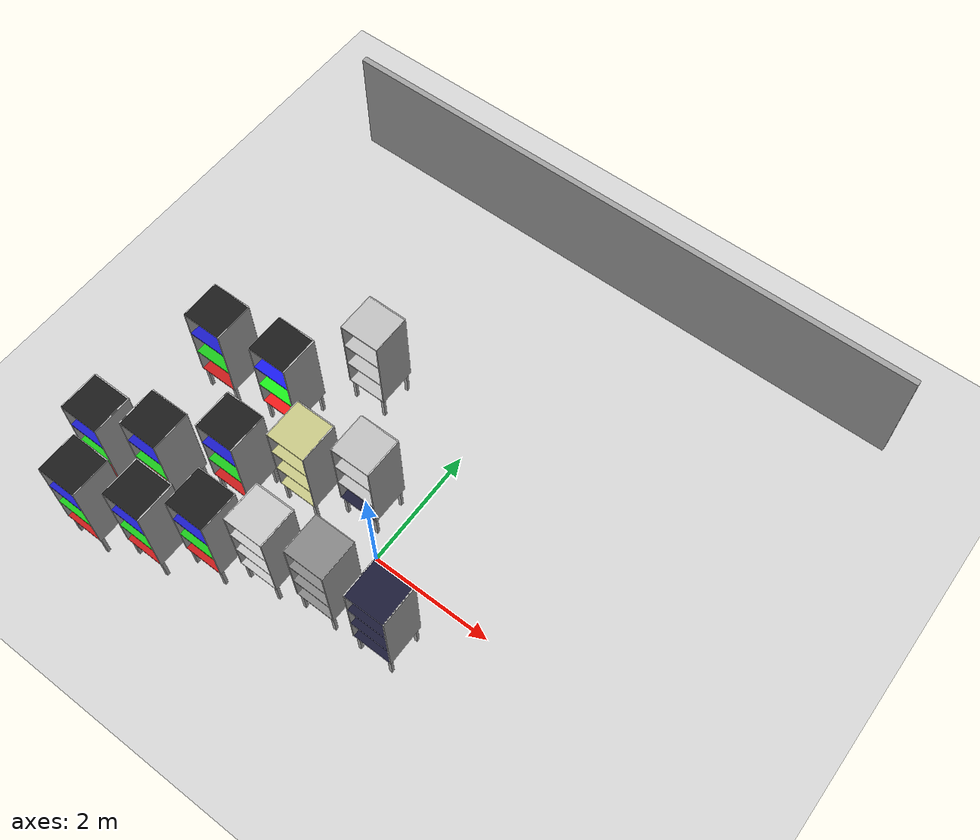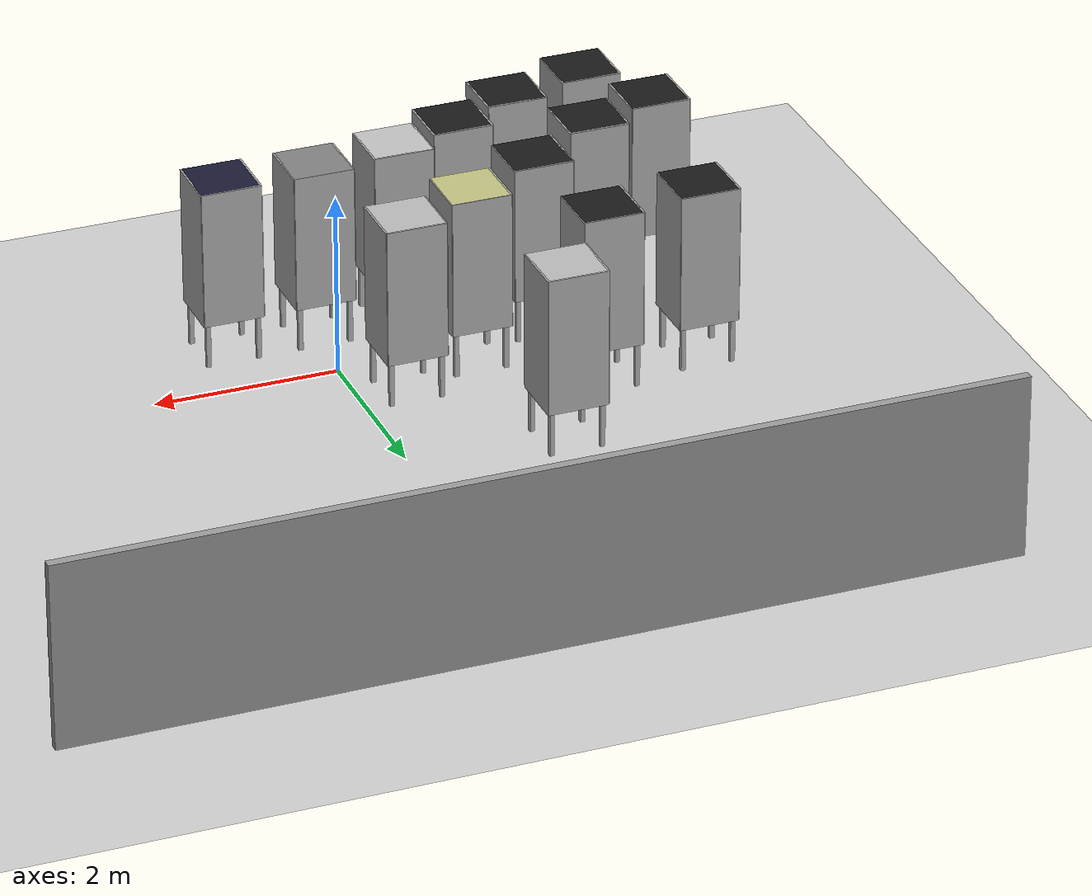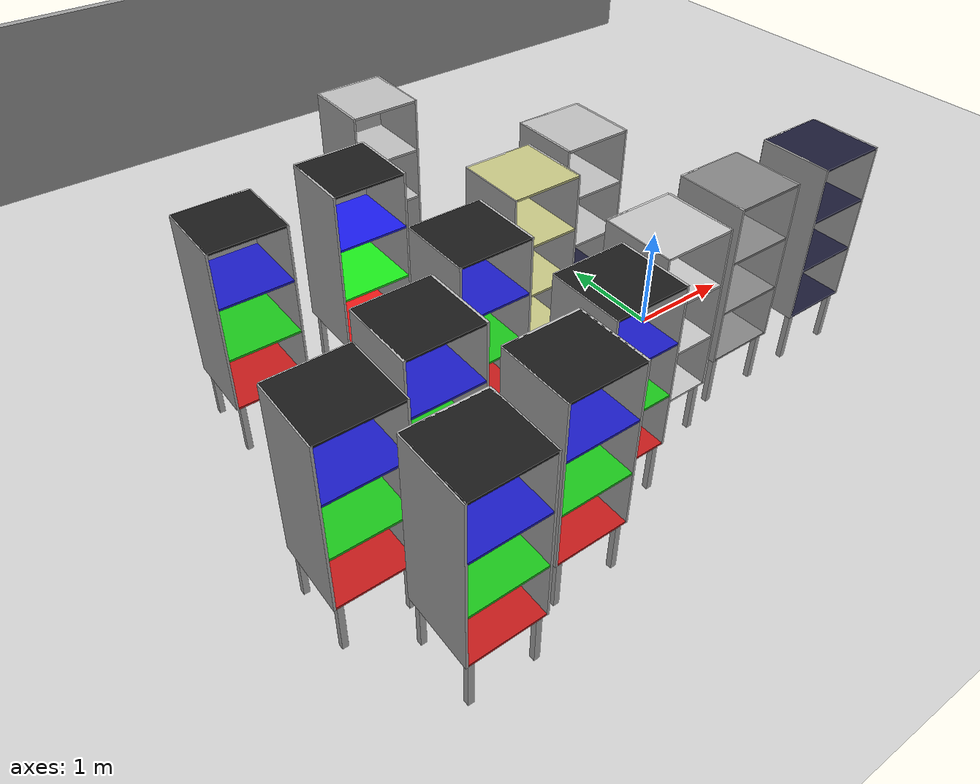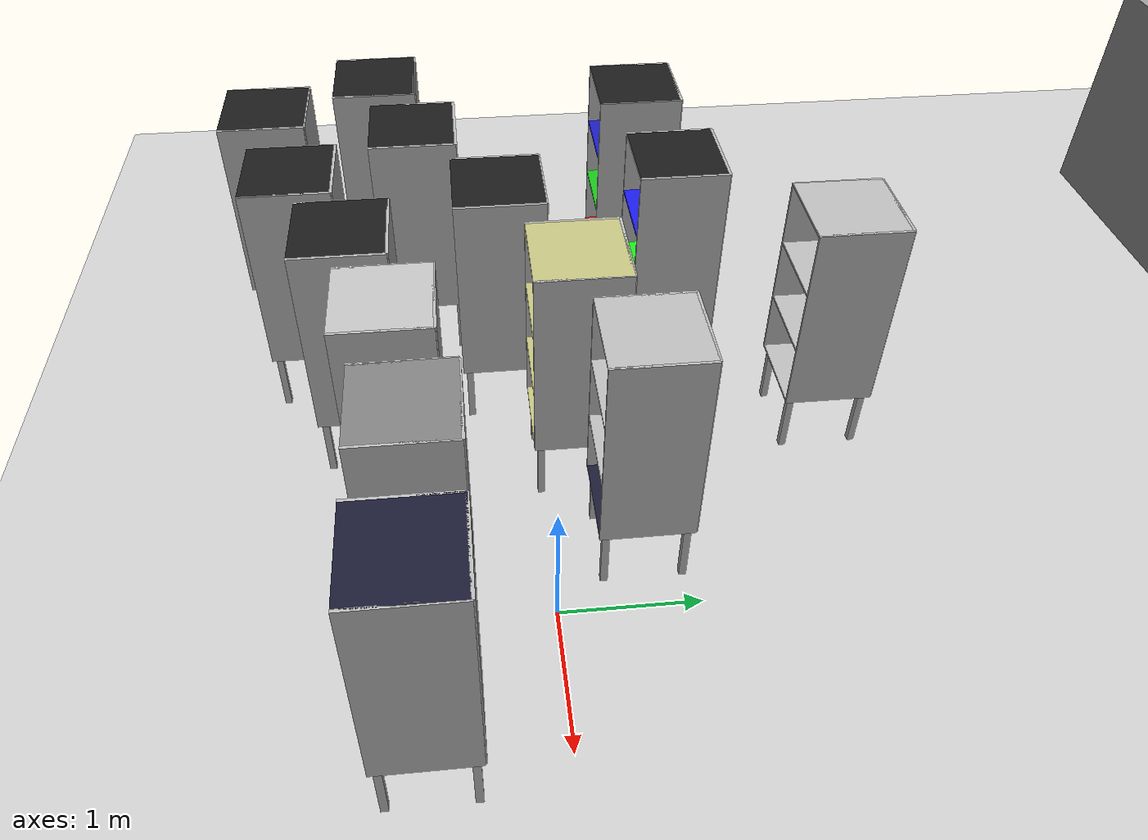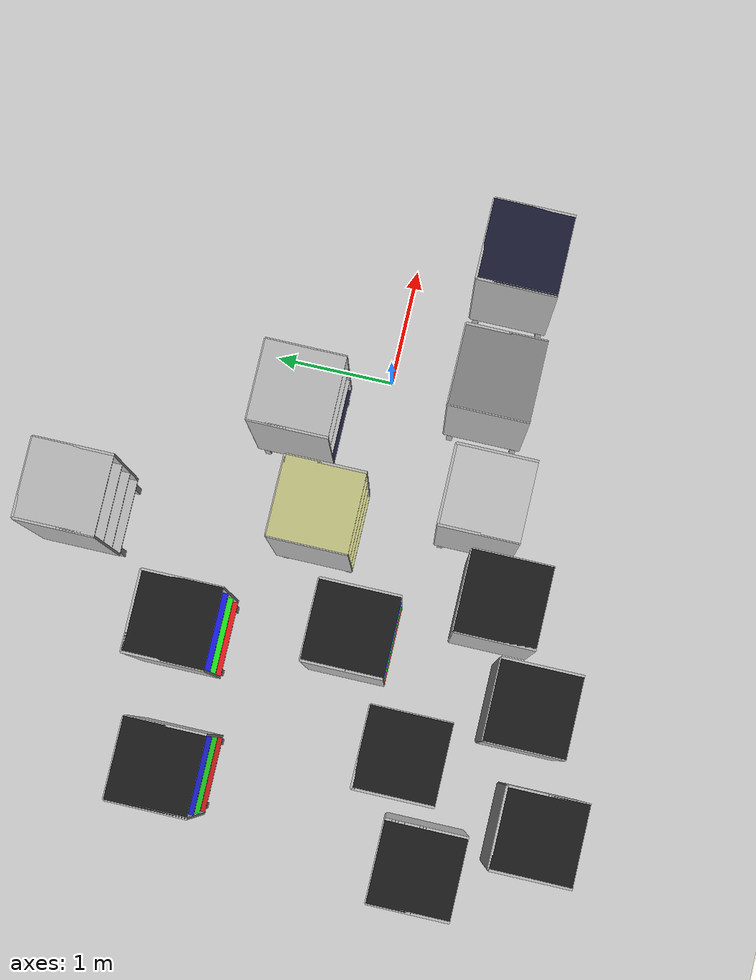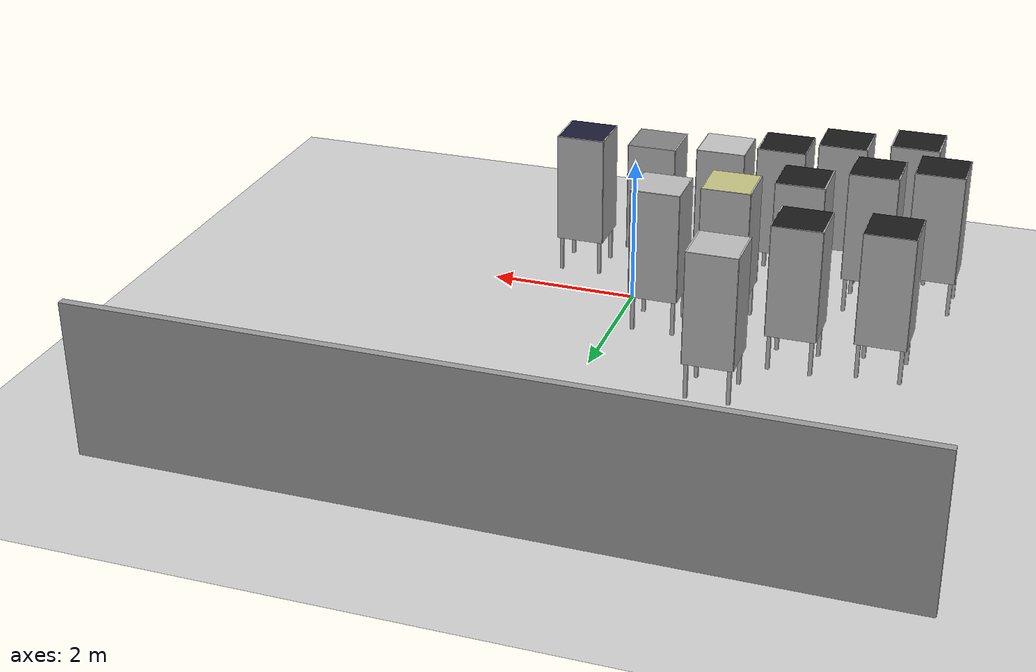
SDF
<sdf version="1.6">
 <world name="default">
  <model name="ground_plane">
   <static>1</static>
   <link name="link">
    <collision name="collision">
     <geometry><plane><normal>0 0 1</normal><size>50 50</size></plane></geometry>
     <surface><friction><ode><mu>100</mu><mu2>50</mu2></ode></friction></surface>
    </collision>
    <visual name="visual">
     <cast_shadows>0</cast_shadows>
     <geometry><plane><normal>0 0 1</normal><size>100 100</size></plane></geometry>
     <material>
      <script><uri>file://media/materials/scripts/gazebo.material</uri><name>Gazebo/Grey</name></script>
     </material>
    </visual>
    <velocity_decay><linear>0</linear><angular>0</angular></velocity_decay>
   </link>
  </model>
  <model name="grey_wall_2">
   <static>1</static>
   <link name="link">
    <pose>0 6 1 0 -0 0</pose>
    <collision name="collision"><geometry><box><size>10 0.1 2</size></box></geometry></collision>
    <visual name="visual">
     <cast_shadows>0</cast_shadows>
     <geometry><box><size>10 0.1 2</size></box></geometry>
     <material>
      <script>
       <uri>model://grey_wall/materials/scripts</uri>
       <uri>model://grey_wall/materials/textures</uri>
       <name>vrc/grey_wall</name>
      </script>
     </material>
    </visual>
    <velocity_decay><linear>0</linear><angular>0</angular></velocity_decay>
   </link>
  </model>
  <model name="warehouse_shelf">
   <static>1</static>
   <pose>-1.67621 2.19 0 0 -0 0</pose>
   <link name="main_block">
    <pose>0 0 1.255 0 -0 0</pose>
    <collision name="collision"><geometry><box><size>0.65 0.65 1.51</size></box></geometry></collision>
   </link>
   <link name="leg_1">
    <pose>0.275 0.275 0.25 0 -0 0</pose>
    <collision name="collision"><geometry><box><size>0.05 0.05 0.5</size></box></geometry></collision>
    <visual name="visual"><geometry><box><size>0.05 0.05 0.5</size></box></geometry></visual>
   </link>
   <link name="leg_2">
    <pose>-0.275 0.275 0.25 0 -0 0</pose>
    <collision name="collision"><geometry><box><size>0.05 0.05 0.5</size></box></geometry></collision>
    <visual name="visual"><geometry><box><size>0.05 0.05 0.5</size></box></geometry></visual>
   </link>
   <link name="leg_3">
    <pose>-0.275 -0.275 0.25 0 -0 0</pose>
    <collision name="collision"><geometry><box><size>0.05 0.05 0.5</size></box></geometry></collision>
    <visual name="visual"><geometry><box><size>0.05 0.05 0.5</size></box></geometry></visual>
   </link>
   <link name="leg_4">
    <pose>0.275 -0.275 0.25 0 -0 0</pose>
    <collision name="collision"><geometry><box><size>0.05 0.05 0.5</size></box></geometry></collision>
    <visual name="visual"><geometry><box><size>0.05 0.05 0.5</size></box></geometry></visual>
   </link>
   <link name="shelf_0">
    <pose>0 0 0.5 0 -0 0</pose>
    <visual name="visual"><geometry><box><size>0.648 0.648 0.02</size></box></geometry></visual>
   </link>
   <link name="shelf_1">
    <pose>0 0 1 0 -0 0</pose>
    <visual name="visual"><geometry><box><size>0.648 0.648 0.02</size></box></geometry></visual>
   </link>
   <link name="shelf_2">
    <pose>0 0 1.5 0 -0 0</pose>
    <visual name="visual"><geometry><box><size>0.648 0.648 0.02</size></box></geometry></visual>
   </link>
   <link name="shelf_top">
    <pose>0 0 2 0 -0 0</pose>
    <visual name="visual"><geometry><box><size>0.648 0.648 0.02</size></box></geometry></visual>
   </link>
   <link name="side_left">
    <pose>0.324 0 1.25 0 -0 0</pose>
    <visual name="visual"><geometry><box><size>0.02 0.65 1.52</size></box></geometry></visual>
   </link>
   <link name="side_right">
    <pose>-0.324 0 1.25 0 -0 0</pose>
    <visual name="visual"><geometry><box><size>0.02 0.65 1.52</size></box></geometry></visual>
   </link>
   <link name="side_back">
    <pose>0 0.324 1.25 0 -0 0</pose>
    <visual name="visual"><geometry><box><size>0.65 0.02 1.52</size></box></geometry></visual>
   </link>
  </model>
  <model name="warehouse_shelf_0">
   <static>1</static>
   <pose>-0.53273 0.621945 0 0 -0 0</pose>
   <link name="main_block">
    <pose>0 0 1.255 0 -0 0</pose>
    <collision name="collision"><geometry><box><size>0.65 0.65 1.51</size></box></geometry></collision>
   </link>
   <link name="leg_1">
    <pose>0.275 0.275 0.25 0 -0 0</pose>
    <collision name="collision"><geometry><box><size>0.05 0.05 0.5</size></box></geometry></collision>
    <visual name="visual"><geometry><box><size>0.05 0.05 0.5</size></box></geometry></visual>
   </link>
   <link name="leg_2">
    <pose>-0.275 0.275 0.25 0 -0 0</pose>
    <collision name="collision"><geometry><box><size>0.05 0.05 0.5</size></box></geometry></collision>
    <visual name="visual"><geometry><box><size>0.05 0.05 0.5</size></box></geometry></visual>
   </link>
   <link name="leg_3">
    <pose>-0.275 -0.275 0.25 0 -0 0</pose>
    <collision name="collision"><geometry><box><size>0.05 0.05 0.5</size></box></geometry></collision>
    <visual name="visual"><geometry><box><size>0.05 0.05 0.5</size></box></geometry></visual>
   </link>
   <link name="leg_4">
    <pose>0.275 -0.275 0.25 0 -0 0</pose>
    <collision name="collision"><geometry><box><size>0.05 0.05 0.5</size></box></geometry></collision>
    <visual name="visual"><geometry><box><size>0.05 0.05 0.5</size></box></geometry></visual>
   </link>
   <link name="shelf_0">
    <pose>0 0 0.5 0 -0 0</pose>
    <visual name="visual">
     <geometry><box><size>0.648 0.648 0.02</size></box></geometry>
     <material>
      <ambient>0.1 0.1 0.1 1</ambient>
      <diffuse>0.1 0.1 0.2 1</diffuse>
      <specular>0 0 0 0</specular>
      <emissive>0 0 0 1</emissive>
     </material>
    </visual>
   </link>
   <link name="shelf_1">
    <pose>0 0 1 0 -0 0</pose>
    <visual name="visual"><geometry><box><size>0.648 0.648 0.02</size></box></geometry></visual>
   </link>
   <link name="shelf_2">
    <pose>0 0 1.5 0 -0 0</pose>
    <visual name="visual"><geometry><box><size>0.648 0.648 0.02</size></box></geometry></visual>
   </link>
   <link name="shelf_top">
    <pose>0 0 2 0 -0 0</pose>
    <visual name="visual"><geometry><box><size>0.648 0.648 0.02</size></box></geometry></visual>
   </link>
   <link name="side_left">
    <pose>0.324 0 1.25 0 -0 0</pose>
    <visual name="visual"><geometry><box><size>0.02 0.65 1.52</size></box></geometry></visual>
   </link>
   <link name="side_right">
    <pose>-0.324 0 1.25 0 -0 0</pose>
    <visual name="visual"><geometry><box><size>0.02 0.65 1.52</size></box></geometry></visual>
   </link>
   <link name="side_back">
    <pose>0 0.324 1.25 0 -0 0</pose>
    <visual name="visual"><geometry><box><size>0.65 0.02 1.52</size></box></geometry></visual>
   </link>
  </model>
  <model name="warehouse_shelf_1">
   <static>1</static>
   <pose>0.940142 -0.856452 0 0 -0 0</pose>
   <link name="main_block">
    <pose>0 0 1.255 0 -0 0</pose>
    <collision name="collision"><geometry><box><size>0.65 0.65 1.51</size></box></geometry></collision>
   </link>
   <link name="leg_1">
    <pose>0.275 0.275 0.25 0 -0 0</pose>
    <collision name="collision"><geometry><box><size>0.05 0.05 0.5</size></box></geometry></collision>
    <visual name="visual"><geometry><box><size>0.05 0.05 0.5</size></box></geometry></visual>
   </link>
   <link name="leg_2">
    <pose>-0.275 0.275 0.25 0 -0 0</pose>
    <collision name="collision"><geometry><box><size>0.05 0.05 0.5</size></box></geometry></collision>
    <visual name="visual"><geometry><box><size>0.05 0.05 0.5</size></box></geometry></visual>
   </link>
   <link name="leg_3">
    <pose>-0.275 -0.275 0.25 0 -0 0</pose>
    <collision name="collision"><geometry><box><size>0.05 0.05 0.5</size></box></geometry></collision>
    <visual name="visual"><geometry><box><size>0.05 0.05 0.5</size></box></geometry></visual>
   </link>
   <link name="leg_4">
    <pose>0.275 -0.275 0.25 0 -0 0</pose>
    <collision name="collision"><geometry><box><size>0.05 0.05 0.5</size></box></geometry></collision>
    <visual name="visual"><geometry><box><size>0.05 0.05 0.5</size></box></geometry></visual>
   </link>
   <link name="shelf_0">
    <pose>0 0 0.5 0 -0 0</pose>
    <visual name="visual">
     <geometry><box><size>0.648 0.648 0.02</size></box></geometry>
     <material>
      <ambient>0.1 0.1 0.1 1</ambient>
      <diffuse>0.1 0.1 0.2 1</diffuse>
      <specular>0 0 0 0</specular>
      <emissive>0 0 0 1</emissive>
     </material>
    </visual>
   </link>
   <link name="shelf_1">
    <pose>0 0 1 0 -0 0</pose>
    <visual name="visual">
     <geometry><box><size>0.648 0.648 0.02</size></box></geometry>
     <material>
      <ambient>0.1 0.1 0.1 1</ambient>
      <diffuse>0.1 0.1 0.2 1</diffuse>
      <specular>0 0 0 0</specular>
      <emissive>0 0 0 1</emissive>
     </material>
    </visual>
   </link>
   <link name="shelf_2">
    <pose>0 0 1.5 0 -0 0</pose>
    <visual name="visual">
     <geometry><box><size>0.648 0.648 0.02</size></box></geometry>
     <material>
      <ambient>0.1 0.1 0.1 1</ambient>
      <diffuse>0.1 0.1 0.2 1</diffuse>
      <specular>0 0 0 0</specular>
      <emissive>0 0 0 1</emissive>
     </material>
    </visual>
   </link>
   <link name="shelf_top">
    <pose>0 0 2 0 -0 0</pose>
    <visual name="visual">
     <geometry><box><size>0.648 0.648 0.02</size></box></geometry>
     <material>
      <ambient>0.1 0.1 0.1 1</ambient>
      <diffuse>0.1 0.1 0.2 1</diffuse>
      <specular>0 0 0 0</specular>
      <emissive>0 0 0 1</emissive>
     </material>
    </visual>
   </link>
   <link name="side_left">
    <pose>0.324 0 1.25 0 -0 0</pose>
    <visual name="visual"><geometry><box><size>0.02 0.65 1.52</size></box></geometry></visual>
   </link>
   <link name="side_right">
    <pose>-0.324 0 1.25 0 -0 0</pose>
    <visual name="visual"><geometry><box><size>0.02 0.65 1.52</size></box></geometry></visual>
   </link>
   <link name="side_back">
    <pose>0 0.324 1.25 0 -0 0</pose>
    <visual name="visual"><geometry><box><size>0.65 0.02 1.52</size></box></geometry></visual>
   </link>
  </model>
  <model name="warehouse_shelf_3">
   <static>1</static>
   <pose>-2.48312 1.13483 0 0 -0 0</pose>
   <link name="main_block">
    <pose>0 0 1.255 0 -0 0</pose>
    <collision name="collision"><geometry><box><size>0.65 0.65 1.51</size></box></geometry></collision>
   </link>
   <link name="leg_1">
    <pose>0.275 0.275 0.25 0 -0 0</pose>
    <collision name="collision"><geometry><box><size>0.05 0.05 0.5</size></box></geometry></collision>
    <visual name="visual"><geometry><box><size>0.05 0.05 0.5</size></box></geometry></visual>
   </link>
   <link name="leg_2">
    <pose>-0.275 0.275 0.25 0 -0 0</pose>
    <collision name="collision"><geometry><box><size>0.05 0.05 0.5</size></box></geometry></collision>
    <visual name="visual"><geometry><box><size>0.05 0.05 0.5</size></box></geometry></visual>
   </link>
   <link name="leg_3">
    <pose>-0.275 -0.275 0.25 0 -0 0</pose>
    <collision name="collision"><geometry><box><size>0.05 0.05 0.5</size></box></geometry></collision>
    <visual name="visual"><geometry><box><size>0.05 0.05 0.5</size></box></geometry></visual>
   </link>
   <link name="leg_4">
    <pose>0.275 -0.275 0.25 0 -0 0</pose>
    <collision name="collision"><geometry><box><size>0.05 0.05 0.5</size></box></geometry></collision>
    <visual name="visual"><geometry><box><size>0.05 0.05 0.5</size></box></geometry></visual>
   </link>
   <link name="shelf_0">
    <pose>0 0 0.5 0 -0 0</pose>
    <visual name="visual">
     <geometry><box><size>0.648 0.648 0.02</size></box></geometry>
     <material>
      <ambient>0.9 0.1 0.1 1</ambient>
      <diffuse>0.9 0.1 0.1 1</diffuse>
      <specular>0 0 0 0</specular>
      <emissive>0 0 0 1</emissive>
     </material>
    </visual>
   </link>
   <link name="shelf_1">
    <pose>0 0 1 0 -0 0</pose>
    <visual name="visual">
     <geometry><box><size>0.648 0.648 0.02</size></box></geometry>
     <material>
      <ambient>0.1 0.9 0.1 1</ambient>
      <diffuse>0.1 0.9 0.1 1</diffuse>
      <specular>0 0 0 0</specular>
      <emissive>0 0 0 1</emissive>
     </material>
    </visual>
   </link>
   <link name="shelf_2">
    <pose>0 0 1.5 0 -0 0</pose>
    <visual name="visual">
     <geometry><box><size>0.648 0.648 0.02</size></box></geometry>
     <material>
      <ambient>0.1 0.1 0.9 1</ambient>
      <diffuse>0.1 0.1 0.9 1</diffuse>
      <specular>0 0 0 0</specular>
      <emissive>0 0 0 1</emissive>
     </material>
    </visual>
   </link>
   <link name="shelf_top">
    <pose>0 0 2 0 -0 0</pose>
    <visual name="visual">
     <geometry><box><size>0.648 0.648 0.02</size></box></geometry>
     <material>
      <ambient>0.1 0.1 0.1 1</ambient>
      <diffuse>0.1 0.1 0.1 1</diffuse>
      <specular>0 0 0 0</specular>
      <emissive>0 0 0 1</emissive>
     </material>
    </visual>
   </link>
   <link name="side_left">
    <pose>0.324 0 1.25 0 -0 0</pose>
    <visual name="visual"><geometry><box><size>0.02 0.65 1.52</size></box></geometry></visual>
   </link>
   <link name="side_right">
    <pose>-0.324 0 1.25 0 -0 0</pose>
    <visual name="visual"><geometry><box><size>0.02 0.65 1.52</size></box></geometry></visual>
   </link>
   <link name="side_back">
    <pose>0 0.324 1.25 0 -0 0</pose>
    <visual name="visual"><geometry><box><size>0.65 0.02 1.52</size></box></geometry></visual>
   </link>
  </model>
  <model name="warehouse_shelf_4">
   <static>1</static>
   <pose>-0.069342 -0.862017 0 0 -0 0</pose>
   <link name="main_block">
    <pose>0 0 1.255 0 -0 0</pose>
    <collision name="collision"><geometry><box><size>0.65 0.65 1.51</size></box></geometry></collision>
   </link>
   <link name="leg_1">
    <pose>0.275 0.275 0.25 0 -0 0</pose>
    <collision name="collision"><geometry><box><size>0.05 0.05 0.5</size></box></geometry></collision>
    <visual name="visual"><geometry><box><size>0.05 0.05 0.5</size></box></geometry></visual>
   </link>
   <link name="leg_2">
    <pose>-0.275 0.275 0.25 0 -0 0</pose>
    <collision name="collision"><geometry><box><size>0.05 0.05 0.5</size></box></geometry></collision>
    <visual name="visual"><geometry><box><size>0.05 0.05 0.5</size></box></geometry></visual>
   </link>
   <link name="leg_3">
    <pose>-0.275 -0.275 0.25 0 -0 0</pose>
    <collision name="collision"><geometry><box><size>0.05 0.05 0.5</size></box></geometry></collision>
    <visual name="visual"><geometry><box><size>0.05 0.05 0.5</size></box></geometry></visual>
   </link>
   <link name="leg_4">
    <pose>0.275 -0.275 0.25 0 -0 0</pose>
    <collision name="collision"><geometry><box><size>0.05 0.05 0.5</size></box></geometry></collision>
    <visual name="visual"><geometry><box><size>0.05 0.05 0.5</size></box></geometry></visual>
   </link>
   <link name="shelf_0">
    <pose>0 0 0.5 0 -0 0</pose>
    <visual name="visual">
     <geometry><box><size>0.648 0.648 0.02</size></box></geometry>
     <material>
      <ambient>0.9 0.1 0.1 1</ambient>
      <diffuse>0.5 0.5 0.5 1</diffuse>
      <specular>0 0 0 0</specular>
      <emissive>0 0 0 1</emissive>
     </material>
    </visual>
   </link>
   <link name="shelf_1">
    <pose>0 0 1 0 -0 0</pose>
    <visual name="visual">
     <geometry><box><size>0.648 0.648 0.02</size></box></geometry>
     <material>
      <ambient>0.1 0.9 0.1 1</ambient>
      <diffuse>0.5 0.5 0.5 1</diffuse>
      <specular>0 0 0 0</specular>
      <emissive>0 0 0 1</emissive>
     </material>
    </visual>
   </link>
   <link name="shelf_2">
    <pose>0 0 1.5 0 -0 0</pose>
    <visual name="visual">
     <geometry><box><size>0.648 0.648 0.02</size></box></geometry>
     <material>
      <ambient>0.1 0.1 0.9 1</ambient>
      <diffuse>0.5 0.5 0.5 1</diffuse>
      <specular>0 0 0 0</specular>
      <emissive>0 0 0 1</emissive>
     </material>
    </visual>
   </link>
   <link name="shelf_top">
    <pose>0 0 2 0 -0 0</pose>
    <visual name="visual">
     <geometry><box><size>0.648 0.648 0.02</size></box></geometry>
     <material>
      <ambient>0.1 0.1 0.1 1</ambient>
      <diffuse>0.5 0.5 0.5 1</diffuse>
      <specular>0 0 0 0</specular>
      <emissive>0 0 0 1</emissive>
     </material>
    </visual>
   </link>
   <link name="side_left">
    <pose>0.324 0 1.25 0 -0 0</pose>
    <visual name="visual"><geometry><box><size>0.02 0.65 1.52</size></box></geometry></visual>
   </link>
   <link name="side_right">
    <pose>-0.324 0 1.25 0 -0 0</pose>
    <visual name="visual"><geometry><box><size>0.02 0.65 1.52</size></box></geometry></visual>
   </link>
   <link name="side_back">
    <pose>0 0.324 1.25 0 -0 0</pose>
    <visual name="visual"><geometry><box><size>0.65 0.02 1.52</size></box></geometry></visual>
   </link>
  </model>
  <model name="warehouse_shelf_5">
   <static>1</static>
   <pose>-1.37464 0.269454 0 0 -0 0</pose>
   <link name="main_block">
    <pose>0 0 1.255 0 -0 0</pose>
    <collision name="collision"><geometry><box><size>0.65 0.65 1.51</size></box></geometry></collision>
   </link>
   <link name="leg_1">
    <pose>0.275 0.275 0.25 0 -0 0</pose>
    <collision name="collision"><geometry><box><size>0.05 0.05 0.5</size></box></geometry></collision>
    <visual name="visual"><geometry><box><size>0.05 0.05 0.5</size></box></geometry></visual>
   </link>
   <link name="leg_2">
    <pose>-0.275 0.275 0.25 0 -0 0</pose>
    <collision name="collision"><geometry><box><size>0.05 0.05 0.5</size></box></geometry></collision>
    <visual name="visual"><geometry><box><size>0.05 0.05 0.5</size></box></geometry></visual>
   </link>
   <link name="leg_3">
    <pose>-0.275 -0.275 0.25 0 -0 0</pose>
    <collision name="collision"><geometry><box><size>0.05 0.05 0.5</size></box></geometry></collision>
    <visual name="visual"><geometry><box><size>0.05 0.05 0.5</size></box></geometry></visual>
   </link>
   <link name="leg_4">
    <pose>0.275 -0.275 0.25 0 -0 0</pose>
    <collision name="collision"><geometry><box><size>0.05 0.05 0.5</size></box></geometry></collision>
    <visual name="visual"><geometry><box><size>0.05 0.05 0.5</size></box></geometry></visual>
   </link>
   <link name="shelf_0">
    <pose>0 0 0.5 0 -0 0</pose>
    <visual name="visual">
     <geometry><box><size>0.648 0.648 0.02</size></box></geometry>
     <material>
      <ambient>0.9 0.1 0.1 1</ambient>
      <diffuse>0.75 0.75 0.5 1</diffuse>
      <specular>0 0 0 0</specular>
      <emissive>0 0 0 1</emissive>
     </material>
    </visual>
   </link>
   <link name="shelf_1">
    <pose>0 0 1 0 -0 0</pose>
    <visual name="visual">
     <geometry><box><size>0.648 0.648 0.02</size></box></geometry>
     <material>
      <ambient>0.1 0.9 0.1 1</ambient>
      <diffuse>0.75 0.75 0.5 1</diffuse>
      <specular>0 0 0 0</specular>
      <emissive>0 0 0 1</emissive>
     </material>
    </visual>
   </link>
   <link name="shelf_2">
    <pose>0 0 1.5 0 -0 0</pose>
    <visual name="visual">
     <geometry><box><size>0.648 0.648 0.02</size></box></geometry>
     <material>
      <ambient>0.1 0.1 0.9 1</ambient>
      <diffuse>0.75 0.75 0.5 1</diffuse>
      <specular>0 0 0 0</specular>
      <emissive>0 0 0 1</emissive>
     </material>
    </visual>
   </link>
   <link name="shelf_top">
    <pose>0 0 2 0 -0 0</pose>
    <visual name="visual">
     <geometry><box><size>0.648 0.648 0.02</size></box></geometry>
     <material>
      <ambient>0.1 0.1 0.1 1</ambient>
      <diffuse>0.75 0.75 0.5 1</diffuse>
      <specular>0 0 0 0</specular>
      <emissive>0 0 0 1</emissive>
     </material>
    </visual>
   </link>
   <link name="side_left">
    <pose>0.324 0 1.25 0 -0 0</pose>
    <visual name="visual"><geometry><box><size>0.02 0.65 1.52</size></box></geometry></visual>
   </link>
   <link name="side_right">
    <pose>-0.324 0 1.25 0 -0 0</pose>
    <visual name="visual"><geometry><box><size>0.02 0.65 1.52</size></box></geometry></visual>
   </link>
   <link name="side_back">
    <pose>0 0.324 1.25 0 -0 0</pose>
    <visual name="visual"><geometry><box><size>0.65 0.02 1.52</size></box></geometry></visual>
   </link>
  </model>
  <model name="warehouse_shelf_6">
   <static>1</static>
   <pose>-0.995623 -0.99425 0 0 -0 0</pose>
   <link name="main_block">
    <pose>0 0 1.255 0 -0 0</pose>
    <collision name="collision"><geometry><box><size>0.65 0.65 1.51</size></box></geometry></collision>
   </link>
   <link name="leg_1">
    <pose>0.275 0.275 0.25 0 -0 0</pose>
    <collision name="collision"><geometry><box><size>0.05 0.05 0.5</size></box></geometry></collision>
    <visual name="visual"><geometry><box><size>0.05 0.05 0.5</size></box></geometry></visual>
   </link>
   <link name="leg_2">
    <pose>-0.275 0.275 0.25 0 -0 0</pose>
    <collision name="collision"><geometry><box><size>0.05 0.05 0.5</size></box></geometry></collision>
    <visual name="visual"><geometry><box><size>0.05 0.05 0.5</size></box></geometry></visual>
   </link>
   <link name="leg_3">
    <pose>-0.275 -0.275 0.25 0 -0 0</pose>
    <collision name="collision"><geometry><box><size>0.05 0.05 0.5</size></box></geometry></collision>
    <visual name="visual"><geometry><box><size>0.05 0.05 0.5</size></box></geometry></visual>
   </link>
   <link name="leg_4">
    <pose>0.275 -0.275 0.25 0 -0 0</pose>
    <collision name="collision"><geometry><box><size>0.05 0.05 0.5</size></box></geometry></collision>
    <visual name="visual"><geometry><box><size>0.05 0.05 0.5</size></box></geometry></visual>
   </link>
   <link name="shelf_0">
    <pose>0 0 0.5 0 -0 0</pose>
    <visual name="visual">
     <geometry><box><size>0.648 0.648 0.02</size></box></geometry>
     <material>
      <ambient>0.9 0.1 0.1 1</ambient>
      <diffuse>0.75 0.75 0.75 1</diffuse>
      <specular>0 0 0 0</specular>
      <emissive>0 0 0 1</emissive>
     </material>
    </visual>
   </link>
   <link name="shelf_1">
    <pose>0 0 1 0 -0 0</pose>
    <visual name="visual">
     <geometry><box><size>0.648 0.648 0.02</size></box></geometry>
     <material>
      <ambient>0.1 0.9 0.1 1</ambient>
      <diffuse>0.75 0.75 0.75 1</diffuse>
      <specular>0 0 0 0</specular>
      <emissive>0 0 0 1</emissive>
     </material>
    </visual>
   </link>
   <link name="shelf_2">
    <pose>0 0 1.5 0 -0 0</pose>
    <visual name="visual">
     <geometry><box><size>0.648 0.648 0.02</size></box></geometry>
     <material>
      <ambient>0.1 0.1 0.9 1</ambient>
      <diffuse>0.75 0.75 0.75 1</diffuse>
      <specular>0 0 0 0</specular>
      <emissive>0 0 0 1</emissive>
     </material>
    </visual>
   </link>
   <link name="shelf_top">
    <pose>0 0 2 0 -0 0</pose>
    <visual name="visual">
     <geometry><box><size>0.648 0.648 0.02</size></box></geometry>
     <material>
      <ambient>0.1 0.1 0.1 1</ambient>
      <diffuse>0.75 0.75 0.75 1</diffuse>
      <specular>0 0 0 0</specular>
      <emissive>0 0 0 1</emissive>
     </material>
    </visual>
   </link>
   <link name="side_left">
    <pose>0.324 0 1.25 0 -0 0</pose>
    <visual name="visual"><geometry><box><size>0.02 0.65 1.52</size></box></geometry></visual>
   </link>
   <link name="side_right">
    <pose>-0.324 0 1.25 0 -0 0</pose>
    <visual name="visual"><geometry><box><size>0.02 0.65 1.52</size></box></geometry></visual>
   </link>
   <link name="side_back">
    <pose>0 0.324 1.25 0 -0 0</pose>
    <visual name="visual"><geometry><box><size>0.65 0.02 1.52</size></box></geometry></visual>
   </link>
  </model>
  <model name="warehouse_shelf_7">
   <static>1</static>
   <pose>-2.24187 -0.20564 0 0 -0 0</pose>
   <link name="main_block">
    <pose>0 0 1.255 0 -0 0</pose>
    <collision name="collision"><geometry><box><size>0.65 0.65 1.51</size></box></geometry></collision>
   </link>
   <link name="leg_1">
    <pose>0.275 0.275 0.25 0 -0 0</pose>
    <collision name="collision"><geometry><box><size>0.05 0.05 0.5</size></box></geometry></collision>
    <visual name="visual"><geometry><box><size>0.05 0.05 0.5</size></box></geometry></visual>
   </link>
   <link name="leg_2">
    <pose>-0.275 0.275 0.25 0 -0 0</pose>
    <collision name="collision"><geometry><box><size>0.05 0.05 0.5</size></box></geometry></collision>
    <visual name="visual"><geometry><box><size>0.05 0.05 0.5</size></box></geometry></visual>
   </link>
   <link name="leg_3">
    <pose>-0.275 -0.275 0.25 0 -0 0</pose>
    <collision name="collision"><geometry><box><size>0.05 0.05 0.5</size></box></geometry></collision>
    <visual name="visual"><geometry><box><size>0.05 0.05 0.5</size></box></geometry></visual>
   </link>
   <link name="leg_4">
    <pose>0.275 -0.275 0.25 0 -0 0</pose>
    <collision name="collision"><geometry><box><size>0.05 0.05 0.5</size></box></geometry></collision>
    <visual name="visual"><geometry><box><size>0.05 0.05 0.5</size></box></geometry></visual>
   </link>
   <link name="shelf_0">
    <pose>0 0 0.5 0 -0 0</pose>
    <visual name="visual">
     <geometry><box><size>0.648 0.648 0.02</size></box></geometry>
     <material>
      <ambient>0.9 0.1 0.1 1</ambient>
      <diffuse>0.75 0.1 0.1 1</diffuse>
      <specular>0 0 0 0</specular>
      <emissive>0 0 0 1</emissive>
     </material>
    </visual>
   </link>
   <link name="shelf_1">
    <pose>0 0 1 0 -0 0</pose>
    <visual name="visual">
     <geometry><box><size>0.648 0.648 0.02</size></box></geometry>
     <material>
      <ambient>0.1 0.9 0.1 1</ambient>
      <diffuse>0.1 0.75 0.1 1</diffuse>
      <specular>0 0 0 0</specular>
      <emissive>0 0 0 1</emissive>
     </material>
    </visual>
   </link>
   <link name="shelf_2">
    <pose>0 0 1.5 0 -0 0</pose>
    <visual name="visual">
     <geometry><box><size>0.648 0.648 0.02</size></box></geometry>
     <material>
      <ambient>0.1 0.1 0.9 1</ambient>
      <diffuse>0.1 0.1 0.75 1</diffuse>
      <specular>0 0 0 0</specular>
      <emissive>0 0 0 1</emissive>
     </material>
    </visual>
   </link>
   <link name="shelf_top">
    <pose>0 0 2 0 -0 0</pose>
    <visual name="visual">
     <geometry><box><size>0.648 0.648 0.02</size></box></geometry>
     <material>
      <ambient>0.1 0.1 0.1 1</ambient>
      <diffuse>0.1 0.1 0.1 1</diffuse>
      <specular>0 0 0 0</specular>
      <emissive>0 0 0 1</emissive>
     </material>
    </visual>
   </link>
   <link name="side_left">
    <pose>0.324 0 1.25 0 -0 0</pose>
    <visual name="visual"><geometry><box><size>0.02 0.65 1.52</size></box></geometry></visual>
   </link>
   <link name="side_right">
    <pose>-0.324 0 1.25 0 -0 0</pose>
    <visual name="visual"><geometry><box><size>0.02 0.65 1.52</size></box></geometry></visual>
   </link>
   <link name="side_back">
    <pose>0 0.324 1.25 0 -0 0</pose>
    <visual name="visual"><geometry><box><size>0.65 0.02 1.52</size></box></geometry></visual>
   </link>
  </model>
  <model name="warehouse_shelf_9">
   <static>1</static>
   <pose>-3.59907 1.00035 0 0 -0 0</pose>
   <link name="main_block">
    <pose>0 0 1.255 0 -0 0</pose>
    <collision name="collision"><geometry><box><size>0.65 0.65 1.51</size></box></geometry></collision>
   </link>
   <link name="leg_1">
    <pose>0.275 0.275 0.25 0 -0 0</pose>
    <collision name="collision"><geometry><box><size>0.05 0.05 0.5</size></box></geometry></collision>
    <visual name="visual"><geometry><box><size>0.05 0.05 0.5</size></box></geometry></visual>
   </link>
   <link name="leg_2">
    <pose>-0.275 0.275 0.25 0 -0 0</pose>
    <collision name="collision"><geometry><box><size>0.05 0.05 0.5</size></box></geometry></collision>
    <visual name="visual"><geometry><box><size>0.05 0.05 0.5</size></box></geometry></visual>
   </link>
   <link name="leg_3">
    <pose>-0.275 -0.275 0.25 0 -0 0</pose>
    <collision name="collision"><geometry><box><size>0.05 0.05 0.5</size></box></geometry></collision>
    <visual name="visual"><geometry><box><size>0.05 0.05 0.5</size></box></geometry></visual>
   </link>
   <link name="leg_4">
    <pose>0.275 -0.275 0.25 0 -0 0</pose>
    <collision name="collision"><geometry><box><size>0.05 0.05 0.5</size></box></geometry></collision>
    <visual name="visual"><geometry><box><size>0.05 0.05 0.5</size></box></geometry></visual>
   </link>
   <link name="shelf_0">
    <pose>0 0 0.5 0 -0 0</pose>
    <visual name="visual">
     <geometry><box><size>0.648 0.648 0.02</size></box></geometry>
     <material>
      <ambient>0.9 0.1 0.1 1</ambient>
      <diffuse>0.75 0.1 0.1 1</diffuse>
      <specular>0 0 0 0</specular>
      <emissive>0 0 0 1</emissive>
     </material>
    </visual>
   </link>
   <link name="shelf_1">
    <pose>0 0 1 0 -0 0</pose>
    <visual name="visual">
     <geometry><box><size>0.648 0.648 0.02</size></box></geometry>
     <material>
      <ambient>0.1 0.9 0.1 1</ambient>
      <diffuse>0.1 0.75 0.1 1</diffuse>
      <specular>1 1 1 0</specular>
      <emissive>0 0 0 1</emissive>
     </material>
    </visual>
   </link>
   <link name="shelf_2">
    <pose>0 0 1.5 0 -0 0</pose>
    <visual name="visual">
     <geometry><box><size>0.648 0.648 0.02</size></box></geometry>
     <material>
      <ambient>0.1 0.1 0.9 1</ambient>
      <diffuse>0.1 0.1 0.75 1</diffuse>
      <specular>0 0 0 0</specular>
      <emissive>0 0 0 1</emissive>
     </material>
    </visual>
   </link>
   <link name="shelf_top">
    <pose>0 0 2 0 -0 0</pose>
    <visual name="visual">
     <geometry><box><size>0.648 0.648 0.02</size></box></geometry>
     <material>
      <ambient>0.1 0.1 0.1 1</ambient>
      <diffuse>0.1 0.1 0.1 1</diffuse>
      <specular>0 0 0 0</specular>
      <emissive>0 0 0 1</emissive>
     </material>
    </visual>
   </link>
   <link name="side_left">
    <pose>0.324 0 1.25 0 -0 0</pose>
    <visual name="visual"><geometry><box><size>0.02 0.65 1.52</size></box></geometry></visual>
   </link>
   <link name="side_right">
    <pose>-0.324 0 1.25 0 -0 0</pose>
    <visual name="visual"><geometry><box><size>0.02 0.65 1.52</size></box></geometry></visual>
   </link>
   <link name="side_back">
    <pose>0 0.324 1.25 0 -0 0</pose>
    <visual name="visual"><geometry><box><size>0.65 0.02 1.52</size></box></geometry></visual>
   </link>
  </model>
  <model name="warehouse_shelf_10">
   <static>1</static>
   <pose>-1.7646 -1.29171 0 0 -0 0</pose>
   <link name="main_block">
    <pose>0 0 1.255 0 -0 0</pose>
    <collision name="collision"><geometry><box><size>0.65 0.65 1.51</size></box></geometry></collision>
   </link>
   <link name="leg_1">
    <pose>0.275 0.275 0.25 0 -0 0</pose>
    <collision name="collision"><geometry><box><size>0.05 0.05 0.5</size></box></geometry></collision>
    <visual name="visual"><geometry><box><size>0.05 0.05 0.5</size></box></geometry></visual>
   </link>
   <link name="leg_2">
    <pose>-0.275 0.275 0.25 0 -0 0</pose>
    <collision name="collision"><geometry><box><size>0.05 0.05 0.5</size></box></geometry></collision>
    <visual name="visual"><geometry><box><size>0.05 0.05 0.5</size></box></geometry></visual>
   </link>
   <link name="leg_3">
    <pose>-0.275 -0.275 0.25 0 -0 0</pose>
    <collision name="collision"><geometry><box><size>0.05 0.05 0.5</size></box></geometry></collision>
    <visual name="visual"><geometry><box><size>0.05 0.05 0.5</size></box></geometry></visual>
   </link>
   <link name="leg_4">
    <pose>0.275 -0.275 0.25 0 -0 0</pose>
    <collision name="collision"><geometry><box><size>0.05 0.05 0.5</size></box></geometry></collision>
    <visual name="visual"><geometry><box><size>0.05 0.05 0.5</size></box></geometry></visual>
   </link>
   <link name="shelf_0">
    <pose>0 0 0.5 0 -0 0</pose>
    <visual name="visual">
     <geometry><box><size>0.648 0.648 0.02</size></box></geometry>
     <material>
      <ambient>0.9 0.1 0.1 1</ambient>
      <diffuse>0.75 0.1 0.1 1</diffuse>
      <emissive>0 0 0 1</emissive>
     </material>
    </visual>
   </link>
   <link name="shelf_1">
    <pose>0 0 1 0 -0 0</pose>
    <visual name="visual">
     <geometry><box><size>0.648 0.648 0.02</size></box></geometry>
     <material>
      <ambient>0.1 0.9 0.1 1</ambient>
      <diffuse>0.1 0.75 0.1 1</diffuse>
      <emissive>0 0 0 1</emissive>
     </material>
    </visual>
   </link>
   <link name="shelf_2">
    <pose>0 0 1.5 0 -0 0</pose>
    <visual name="visual">
     <geometry><box><size>0.648 0.648 0.02</size></box></geometry>
     <material>
      <ambient>0.1 0.1 0.9 1</ambient>
      <diffuse>0.1 0.1 0.75 1</diffuse>
      <emissive>0 0 0 1</emissive>
     </material>
    </visual>
   </link>
   <link name="shelf_top">
    <pose>0 0 2 0 -0 0</pose>
    <visual name="visual">
     <geometry><box><size>0.648 0.648 0.02</size></box></geometry>
     <material>
      <ambient>0.1 0.1 0.1 1</ambient>
      <diffuse>0.1 0.1 0.1 1</diffuse>
      <emissive>0 0 0 1</emissive>
     </material>
    </visual>
   </link>
   <link name="side_left">
    <pose>0.324 0 1.25 0 -0 0</pose>
    <visual name="visual"><geometry><box><size>0.02 0.65 1.52</size></box></geometry></visual>
   </link>
   <link name="side_right">
    <pose>-0.324 0 1.25 0 -0 0</pose>
    <visual name="visual"><geometry><box><size>0.02 0.65 1.52</size></box></geometry></visual>
   </link>
   <link name="side_back">
    <pose>0 0.324 1.25 0 -0 0</pose>
    <visual name="visual"><geometry><box><size>0.65 0.02 1.52</size></box></geometry></visual>
   </link>
  </model>
  <model name="warehouse_shelf_11">
   <static>1</static>
   <pose>-3.09725 -0.803615 0 0 -0 0</pose>
   <link name="main_block">
    <pose>0 0 1.255 0 -0 0</pose>
    <collision name="collision"><geometry><box><size>0.65 0.65 1.51</size></box></geometry></collision>
   </link>
   <link name="leg_1">
    <pose>0.275 0.275 0.25 0 -0 0</pose>
    <collision name="collision"><geometry><box><size>0.05 0.05 0.5</size></box></geometry></collision>
    <visual name="visual"><geometry><box><size>0.05 0.05 0.5</size></box></geometry></visual>
   </link>
   <link name="leg_2">
    <pose>-0.275 0.275 0.25 0 -0 0</pose>
    <collision name="collision"><geometry><box><size>0.05 0.05 0.5</size></box></geometry></collision>
    <visual name="visual"><geometry><box><size>0.05 0.05 0.5</size></box></geometry></visual>
   </link>
   <link name="leg_3">
    <pose>-0.275 -0.275 0.25 0 -0 0</pose>
    <collision name="collision"><geometry><box><size>0.05 0.05 0.5</size></box></geometry></collision>
    <visual name="visual"><geometry><box><size>0.05 0.05 0.5</size></box></geometry></visual>
   </link>
   <link name="leg_4">
    <pose>0.275 -0.275 0.25 0 -0 0</pose>
    <collision name="collision"><geometry><box><size>0.05 0.05 0.5</size></box></geometry></collision>
    <visual name="visual"><geometry><box><size>0.05 0.05 0.5</size></box></geometry></visual>
   </link>
   <link name="shelf_0">
    <pose>0 0 0.5 0 -0 0</pose>
    <visual name="visual">
     <geometry><box><size>0.648 0.648 0.02</size></box></geometry>
     <material>
      <ambient>0.9 0.1 0.1 1</ambient>
      <diffuse>0.75 0.1 0.1 1</diffuse>
      <emissive>0 0 0 1</emissive>
     </material>
    </visual>
   </link>
   <link name="shelf_1">
    <pose>0 0 1 0 -0 0</pose>
    <visual name="visual">
     <geometry><box><size>0.648 0.648 0.02</size></box></geometry>
     <material>
      <ambient>0.1 0.9 0.1 1</ambient>
      <diffuse>0.1 0.75 0.1 1</diffuse>
      <emissive>0 0 0 0</emissive>
     </material>
    </visual>
   </link>
   <link name="shelf_2">
    <pose>0 0 1.5 0 -0 0</pose>
    <visual name="visual">
     <geometry><box><size>0.648 0.648 0.02</size></box></geometry>
     <material>
      <ambient>0.1 0.1 0.9 1</ambient>
      <diffuse>0.1 0.1 0.75 1</diffuse>
      <emissive>0 0 0 0</emissive>
     </material>
    </visual>
   </link>
   <link name="shelf_top">
    <pose>0 0 2 0 -0 0</pose>
    <visual name="visual">
     <geometry><box><size>0.648 0.648 0.02</size></box></geometry>
     <material>
      <ambient>0.1 0.1 0.1 1</ambient>
      <diffuse>0.1 0.1 0.1 1</diffuse>
      <emissive>0 0 0 0</emissive>
     </material>
    </visual>
   </link>
   <link name="side_left">
    <pose>0.324 0 1.25 0 -0 0</pose>
    <visual name="visual"><geometry><box><size>0.02 0.65 1.52</size></box></geometry></visual>
   </link>
   <link name="side_right">
    <pose>-0.324 0 1.25 0 -0 0</pose>
    <visual name="visual"><geometry><box><size>0.02 0.65 1.52</size></box></geometry></visual>
   </link>
   <link name="side_back">
    <pose>0 0.324 1.25 0 -0 0</pose>
    <visual name="visual"><geometry><box><size>0.65 0.02 1.52</size></box></geometry></visual>
   </link>
  </model>
  <model name="warehouse_shelf_12">
   <static>1</static>
   <pose>-2.52481 -1.6935 0 0 -0 0</pose>
   <link name="main_block">
    <pose>0 0 1.255 0 -0 0</pose>
    <collision name="collision"><geometry><box><size>0.65 0.65 1.51</size></box></geometry></collision>
   </link>
   <link name="leg_1">
    <pose>0.275 0.275 0.25 0 -0 0</pose>
    <collision name="collision"><geometry><box><size>0.05 0.05 0.5</size></box></geometry></collision>
    <visual name="visual"><geometry><box><size>0.05 0.05 0.5</size></box></geometry></visual>
   </link>
   <link name="leg_2">
    <pose>-0.275 0.275 0.25 0 -0 0</pose>
    <collision name="collision"><geometry><box><size>0.05 0.05 0.5</size></box></geometry></collision>
    <visual name="visual"><geometry><box><size>0.05 0.05 0.5</size></box></geometry></visual>
   </link>
   <link name="leg_3">
    <pose>-0.275 -0.275 0.25 0 -0 0</pose>
    <collision name="collision"><geometry><box><size>0.05 0.05 0.5</size></box></geometry></collision>
    <visual name="visual"><geometry><box><size>0.05 0.05 0.5</size></box></geometry></visual>
   </link>
   <link name="leg_4">
    <pose>0.275 -0.275 0.25 0 -0 0</pose>
    <collision name="collision"><geometry><box><size>0.05 0.05 0.5</size></box></geometry></collision>
    <visual name="visual"><geometry><box><size>0.05 0.05 0.5</size></box></geometry></visual>
   </link>
   <link name="shelf_0">
    <pose>0 0 0.5 0 -0 0</pose>
    <visual name="visual">
     <geometry><box><size>0.648 0.648 0.02</size></box></geometry>
     <material>
      <ambient>0.9 0.1 0.1 1</ambient>
      <diffuse>0.75 0.1 0.1 1</diffuse>
      <emissive>0 0 0 1</emissive>
     </material>
    </visual>
   </link>
   <link name="shelf_1">
    <pose>0 0 1 0 -0 0</pose>
    <visual name="visual">
     <geometry><box><size>0.648 0.648 0.02</size></box></geometry>
     <material>
      <ambient>0.1 0.9 0.1 1</ambient>
      <diffuse>0.1 0.75 0.1 1</diffuse>
      <emissive>0 0 0 1</emissive>
     </material>
    </visual>
   </link>
   <link name="shelf_2">
    <pose>0 0 1.5 0 -0 0</pose>
    <visual name="visual">
     <geometry><box><size>0.648 0.648 0.02</size></box></geometry>
     <material>
      <ambient>0.1 0.1 0.9 1</ambient>
      <diffuse>0.1 0.1 0.75 1</diffuse>
      <emissive>0 0 0 0</emissive>
     </material>
    </visual>
   </link>
   <link name="shelf_top">
    <pose>0 0 2 0 -0 0</pose>
    <visual name="visual">
     <geometry><box><size>0.648 0.648 0.02</size></box></geometry>
     <material>
      <ambient>0.1 0.1 0.1 1</ambient>
      <diffuse>0.1 0.1 0.1 1</diffuse>
      <emissive>0 0 0 0</emissive>
     </material>
    </visual>
   </link>
   <link name="side_left">
    <pose>0.324 0 1.25 0 -0 0</pose>
    <visual name="visual"><geometry><box><size>0.02 0.65 1.52</size></box></geometry></visual>
   </link>
   <link name="side_right">
    <pose>-0.324 0 1.25 0 -0 0</pose>
    <visual name="visual"><geometry><box><size>0.02 0.65 1.52</size></box></geometry></visual>
   </link>
   <link name="side_back">
    <pose>0 0.324 1.25 0 -0 0</pose>
    <visual name="visual"><geometry><box><size>0.65 0.02 1.52</size></box></geometry></visual>
   </link>
  </model>
  <model name="warehouse_shelf_15">
   <static>1</static>
   <pose>-3.91034 -1.10504 0 0 -0 0</pose>
   <link name="main_block">
    <pose>0 0 1.255 0 -0 0</pose>
    <collision name="collision"><geometry><box><size>0.65 0.65 1.51</size></box></geometry></collision>
   </link>
   <link name="leg_1">
    <pose>0.275 0.275 0.25 0 -0 0</pose>
    <collision name="collision"><geometry><box><size>0.05 0.05 0.5</size></box></geometry></collision>
    <visual name="visual"><geometry><box><size>0.05 0.05 0.5</size></box></geometry></visual>
   </link>
   <link name="leg_2">
    <pose>-0.275 0.275 0.25 0 -0 0</pose>
    <collision name="collision"><geometry><box><size>0.05 0.05 0.5</size></box></geometry></collision>
    <visual name="visual"><geometry><box><size>0.05 0.05 0.5</size></box></geometry></visual>
   </link>
   <link name="leg_3">
    <pose>-0.275 -0.275 0.25 0 -0 0</pose>
    <collision name="collision"><geometry><box><size>0.05 0.05 0.5</size></box></geometry></collision>
    <visual name="visual"><geometry><box><size>0.05 0.05 0.5</size></box></geometry></visual>
   </link>
   <link name="leg_4">
    <pose>0.275 -0.275 0.25 0 -0 0</pose>
    <collision name="collision"><geometry><box><size>0.05 0.05 0.5</size></box></geometry></collision>
    <visual name="visual"><geometry><box><size>0.05 0.05 0.5</size></box></geometry></visual>
   </link>
   <link name="shelf_0">
    <pose>0 0 0.5 0 -0 0</pose>
    <visual name="visual">
     <geometry><box><size>0.648 0.648 0.02</size></box></geometry>
     <material><ambient>0.75 0.1 0.1 1</ambient><diffuse>0.75 0.1 0.1 1</diffuse></material>
    </visual>
   </link>
   <link name="shelf_1">
    <pose>0 0 1 0 -0 0</pose>
    <visual name="visual">
     <geometry><box><size>0.648 0.648 0.02</size></box></geometry>
     <material><ambient>0.1 0.75 0.1 1</ambient><diffuse>0.1 0.75 0.1 1</diffuse></material>
    </visual>
   </link>
   <link name="shelf_2">
    <pose>0 0 1.5 0 -0 0</pose>
    <visual name="visual">
     <geometry><box><size>0.648 0.648 0.02</size></box></geometry>
     <material><ambient>0.1 0.1 0.75 1</ambient><diffuse>0.1 0.1 0.75 1</diffuse></material>
    </visual>
   </link>
   <link name="shelf_top">
    <pose>0 0 2 0 -0 0</pose>
    <visual name="visual">
     <geometry><box><size>0.648 0.648 0.02</size></box></geometry>
     <material><ambient>0.1 0.1 0.1 1</ambient><diffuse>0.1 0.1 0.1 1</diffuse></material>
    </visual>
   </link>
   <link name="side_left">
    <pose>0.324 0 1.25 0 -0 0</pose>
    <visual name="visual"><geometry><box><size>0.02 0.65 1.52</size></box></geometry></visual>
   </link>
   <link name="side_right">
    <pose>-0.324 0 1.25 0 -0 0</pose>
    <visual name="visual"><geometry><box><size>0.02 0.65 1.52</size></box></geometry></visual>
   </link>
   <link name="side_back">
    <pose>0 0.324 1.25 0 -0 0</pose>
    <visual name="visual"><geometry><box><size>0.65 0.02 1.52</size></box></geometry></visual>
   </link>
  </model>
  <model name="warehouse_shelf_18">
   <static>1</static>
   <pose>-3.46115 -1.94901 0 0 -0 0</pose>
   <link name="main_block">
    <pose>0 0 1.255 0 -0 0</pose>
    <collision name="collision"><geometry><box><size>0.65 0.65 1.51</size></box></geometry></collision>
   </link>
   <link name="leg_1">
    <pose>0.275 0.275 0.25 0 -0 0</pose>
    <collision name="collision"><geometry><box><size>0.05 0.05 0.5</size></box></geometry></collision>
    <visual name="visual"><geometry><box><size>0.05 0.05 0.5</size></box></geometry></visual>
   </link>
   <link name="leg_2">
    <pose>-0.275 0.275 0.25 0 -0 0</pose>
    <collision name="collision"><geometry><box><size>0.05 0.05 0.5</size></box></geometry></collision>
    <visual name="visual"><geometry><box><size>0.05 0.05 0.5</size></box></geometry></visual>
   </link>
   <link name="leg_3">
    <pose>-0.275 -0.275 0.25 0 -0 0</pose>
    <collision name="collision"><geometry><box><size>0.05 0.05 0.5</size></box></geometry></collision>
    <visual name="visual"><geometry><box><size>0.05 0.05 0.5</size></box></geometry></visual>
   </link>
   <link name="leg_4">
    <pose>0.275 -0.275 0.25 0 -0 0</pose>
    <collision name="collision"><geometry><box><size>0.05 0.05 0.5</size></box></geometry></collision>
    <visual name="visual"><geometry><box><size>0.05 0.05 0.5</size></box></geometry></visual>
   </link>
   <link name="shelf_0">
    <pose>0 0 0.5 0 -0 0</pose>
    <visual name="visual">
     <geometry><box><size>0.648 0.648 0.02</size></box></geometry>
     <material><ambient>0.75 0.1 0.1 1</ambient><diffuse>0.75 0.1 0.1 1</diffuse></material>
    </visual>
   </link>
   <link name="shelf_1">
    <pose>0 0 1 0 -0 0</pose>
    <visual name="visual">
     <geometry><box><size>0.648 0.648 0.02</size></box></geometry>
     <material><ambient>0.1 0.75 0.1 1</ambient><diffuse>0.1 0.75 0.1 1</diffuse></material>
    </visual>
   </link>
   <link name="shelf_2">
    <pose>0 0 1.5 0 -0 0</pose>
    <visual name="visual">
     <geometry><box><size>0.648 0.648 0.02</size></box></geometry>
     <material><ambient>0.1 0.1 0.75 1</ambient><diffuse>0.1 0.1 0.75 1</diffuse></material>
    </visual>
   </link>
   <link name="shelf_top">
    <pose>0 0 2 0 -0 0</pose>
    <visual name="visual">
     <geometry><box><size>0.648 0.648 0.02</size></box></geometry>
     <material><ambient>0.1 0.1 0.1 1</ambient><diffuse>0.1 0.1 0.1 1</diffuse></material>
    </visual>
   </link>
   <link name="side_left">
    <pose>0.324 0 1.25 0 -0 0</pose>
    <visual name="visual"><geometry><box><size>0.02 0.65 1.52</size></box></geometry></visual>
   </link>
   <link name="side_right">
    <pose>-0.324 0 1.25 0 -0 0</pose>
    <visual name="visual"><geometry><box><size>0.02 0.65 1.52</size></box></geometry></visual>
   </link>
   <link name="side_back">
    <pose>0 0.324 1.25 0 -0 0</pose>
    <visual name="visual"><geometry><box><size>0.65 0.02 1.52</size></box></geometry></visual>
   </link>
  </model>
 </world>
</sdf>
